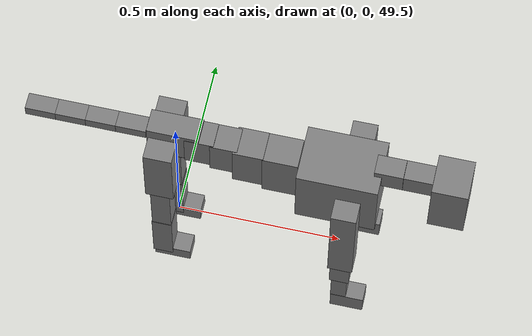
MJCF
<mujoco model="dog">

    <default>
        <joint armature="0.02" stiffness="1" damping="0.2" limited="true"/>
        <geom condim="3" friction="1 0.05 0.05" margin="0.01"/>
        <motor ctrllimited="true" ctrlrange="-1.0 1.0" forcelimited="true" gear="50"/>
    </default>

    <compiler inertiafromgeom="true" angle="radian"/>

    <option timestep="0.016" iterations="50" tolerance="1e-10" solver="Newton" jacobian="dense" cone="pyramidal"/>

    <size nconmax="20000" njmax="60000" nstack="5000000"/>
    <visual>
        <map force="0.1" zfar="30"/>
        <rgba haze="0.15 0.25 0.35 1"/>
        <quality shadowsize="2048"/>
        <global offwidth="800" offheight="800"/>
    </visual>

    <asset>
        <texture type="skybox" builtin="gradient" rgb1="0.3 0.5 0.7" rgb2="0 0 0" width="512" height="512"/>
        <texture name="texplane" type="2d" builtin="checker" rgb1=".2 .3 .4" rgb2=".1 0.15 0.2" width="512" height="512"
                 mark="cross" markrgb=".8 .8 .8"/>
        <texture name="texgeom" type="cube" builtin="flat" mark="cross" width="127" height="1278" rgb1="0.8 0.6 0.4"
                 rgb2="0.8 0.6 0.4" markrgb="1 1 1" random="0.01"/>

        <material name="matplane" reflectance="0.3" texture="texplane" texrepeat="1 1" texuniform="true"/>
        <material name="matgeom" texture="texgeom" texuniform="true" rgba="0.8 0.6 .4 1"/>
    </asset>

    <worldbody>
        <geom name="floor" pos="0 0 0" size="0 0 .25" type="plane" material="matplane" condim="3"/>

        <light directional="false" diffuse=".2 .2 .2" specular="0 0 0" pos="0 0 5" dir="0 0 -1" castshadow="false"/>
        <light mode="targetbodycom" target="torso" directional="false" diffuse=".8 .8 .8" specular="0.3 0.3 0.3"
               pos="0 0 4.0" dir="0 0 -1"/>

        <body name="root" pos="0 0 50">
            <freejoint name="root_1"/>
            <geom type="box" pos="0 0 -0.02" size="0.0774  0.0358  0.063" density="2030"/>

            <body name="spine1" pos="0.054 0 0">
                <joint name="spine1_y" axis="0 1 0" range="0 0.7" limited="true"/>
                <geom type="box" pos="0.02375 0 -0.03" size="0.04375  0.0375  0.05985" density="2030"/>

                <body name="spine2" pos="0.0612 0 0">
                    <joint name="spine2_y" axis="0 1 0" range="-0.15 0.15" limited="true"/>
                    <geom type="box" pos="0.03555  0  -0.04" size="0.04055  0.039  0.06615" density="2030"/>

                    <body name="spine3" pos="0.0730 0 0">
                        <joint name="spine3_y" axis="0 1 0" range="-0.15 0.15" limited="true"/>
                        <geom type="box" pos="0.03555  0  -0.057" size="0.04555  0.0445  0.081" density="2030"/>

                        <body name="spine4" pos="0.0780 0 0">
                            <joint name="spine4_y" axis="0 1 0" range="-0.15 0.15" limited="true"/>
                            <geom type="box" pos="0.05265  0  -0.07" size="0.05265  0.045  0.09135" density="2030"/>

                            <body name="torso" pos="0.1082 0 0">
                                <joint name="torso_y" axis="0 1 0" range="-0.15 0.15" limited="true"/>
                                <geom type="box" pos="0.11925  0  -0.085" size="0.11925  0.085  0.11745"
                                      density="2030"/>

                                <body name="neck1" pos="0.2160  0   0.0180">
                                    <joint name="neck1_y" axis="0 1 0" range="-1.2  -1" limited="true"/>
                                    <geom type="box" pos="0.0423  0  0" size="0.0423  0.03  0.036" density="2325"/>

                                    <body name="neck2" pos="0.0853  0  0">
                                        <joint name="neck2_y" axis="0 1 0" range="0.1  0" limited="true"/>
                                        <geom type="box" pos="0.0423  0  0" size="0.0423  0.03  0.036" density="2325"/>

                                        <body name="head" pos="0.0853  0  0">
                                            <joint name="head_y" axis="0 1 0" range="-0.3  -0.2" limited="true"/>
                                            <geom type="box" pos="0.0531  0  -0.055" size="0.0531  0.06  0.1044"
                                                  density="4030"/>

                                        </body>
                                    </body>
                                </body>

                                <body name="front_shoulder" pos="0.156  0   -0.0480">
                                    <joint name="front_shoulder_y" axis="0 1 0" range="-1 1.5" limited="true"/>
                                    <geom type="box" pos="0 0.13 -0.1452" size="0.0371  0.0317  0.1718" density="1158"/>
                                    <geom type="box" pos="0 -0.13 -0.1452" size="0.0371  0.0317  0.1718"
                                          density="1158"/>

                                    <body name="front_elbow" pos="0  0  -0.2903">
                                        <joint name="front_elbow_y" axis="0 1 0" range="-2 0" limited="true"/>
                                        <geom type="box" pos="0 0.13 -0.0553" size="0.0299  0.0306  0.0553"
                                              density="1081"/>
                                        <geom type="box" pos="0 -0.13 -0.0553" size="0.0299  0.0306  0.0553"
                                              density="1081"/>

                                        <body name="front_wrist" pos="0  0  -0.1107">
                                            <joint name="front_wrist_y" axis="0 1 0" range="-0.2 0" limited="true"/>
                                            <geom type="box" pos="0 0.13 -0.0628" size="0.0237  0.0263  0.0759"
                                                  density="1664"/>
                                            <geom type="box" pos="0 -0.13 -0.0628" size="0.0237  0.0263  0.0759"
                                                  density="1664"/>

                                            <body name="front_finger_end" pos="0  0  -0.1256">
                                                <joint name="front_finger_y" axis="0 1 0" range="-0.4 1"
                                                       limited="true"/>
                                                <geom type="box" pos="0.0273  0.13  -0.0207"
                                                      size="0.0501  0.0273  0.0357" density="1515"/>
                                                <geom type="box" pos="0.0273  -0.13  -0.0207"
                                                      size="0.0501  0.0273  0.0357" density="1515"/>

                                            </body>

                                        </body>
                                    </body>
                                </body>

                            </body>
                        </body>
                    </body>
                </body>
            </body>

            <body name="back_hip" pos="-0.03 0 -0.018">
                <joint name="back_hip_y" axis="0 1 0" range="-1.5 0.3" limited="true"/>
                <geom type="box" pos="0 0.07 -0.0962" size="0.0423  0.0332  0.1190" density="1154"/>
                <geom type="box" pos="0 -0.07 -0.0962" size="0.0423  0.0332  0.1190" density="1154"/>

                <body name="back_knee" pos="0  0  -0.1924">
                    <joint name="back_knee_y" axis="0 1 0" range="0 2.8" limited="true"/>
                    <geom type="box" pos="0 0.07 -0.1135" size="0.0293  0.0289  0.1291" density="1227"/>
                    <geom type="box" pos="0 -0.07 -0.1135" size="0.0293  0.0289  0.1291" density="1227"/>

                    <body name="back_ankle" pos="0  0  -0.2271">
                        <joint name="back_ankle_y" axis="0 1 0" range="-2.2 0" limited="true"/>
                        <geom type="box" pos="0 0.07 -0.0859" size="0.0306  0.0306  0.0972" density="1284"/>
                        <geom type="box" pos="0 -0.07 -0.0859" size="0.0306  0.0306  0.0972" density="1284"/>

                        <body name="back_toe_end" pos="0  0  -0.1719">
                            <joint name="back_toe_y" axis="0 1 0" range="-0.4 1" limited="true"/>
                            <geom type="box" pos="0.0299  0.07  -0.0089" size="0.0549  0.0299  0.0239" density="1515"/>
                            <geom type="box" pos="0.0299  -0.07  -0.0089" size="0.0549  0.0299  0.0239" density="1515"/>

                        </body>
                    </body>
                </body>
            </body>

            <body name="tail1" pos="-0.074 0 -0.006">
                <joint name="tail1_y" axis="0 1 0" range="-0.2 0.2" limited="true"/>
                <geom type="box" pos="-0.0536  0  0" size="0.045  0.025  0.0175" density="1587"/>

                <body name="tail2" pos="-0.09 0 0">
                    <joint name="tail2_y" axis="0 1 0" range="-0.2 0.2" limited="true"/>
                    <geom type="box" pos="-0.0536  0  0" size="0.045  0.025  0.0175" density="1587"/>

                    <body name="tail3" pos="-0.09 0 0">
                        <joint name="tail3_y" axis="0 1 0" range="-0.2 0.2" limited="true"/>
                        <geom type="box" pos="-0.0536  0  0" size="0.045  0.025  0.0175" density="1587"/>

                        <body name="tail4" pos="-0.09 0 0">
                            <joint name="tail4_y" axis="0 1 0" range="-0.2 0.2" limited="true"/>
                            <geom type="box" pos="-0.0536  0  0" size="0.045  0.025  0.0175" density="1587"/>

                        </body>
                    </body>
                </body>
            </body>
        </body>
    </worldbody>

    <actuator>
        <motor joint="spine1_y" forcerange="-150 150     "/>
        <motor joint="spine2_y" forcerange="-150 150     "/>
        <motor joint="spine3_y" forcerange="-150 150     "/>
        <motor joint="spine4_y" forcerange="-150 150     "/>
        <motor joint="torso_y" forcerange="-150 150     "/>
        <motor joint="neck1_y" forcerange="-100 100       "/>
        <motor joint="neck2_y" forcerange="-100 100       "/>
        <motor joint="head_y" forcerange="-150 150       "/>
        <motor joint="front_shoulder_y" forcerange="-137.30 173.97"/>
        <motor joint="front_elbow_y" forcerange="-158.94 163.62"/>
        <motor joint="front_wrist_y" forcerange="-119.51 91.03"/>
        <motor joint="front_finger_y" forcerange="-82.57 23.17"/>
        <motor joint="back_hip_y" forcerange="-252.59 389.74"/>
        <motor joint="back_knee_y" forcerange="-225.78 394.75"/>
        <motor joint="back_angle_y" forcerange="-241.58 147.92"/>
        <motor joint="back_toe_y" forcerange="-95.18 64.30"/>
        <motor joint="tail1_y" forcerange="-50 50     "/>
        <motor joint="tail2_y" forcerange="-50 50     "/>
        <motor joint="tail3_y" forcerange="-50 50     "/>
        <motor joint="tail4_y" forcerange="-50 50     "/>
    </actuator>
</mujoco>
